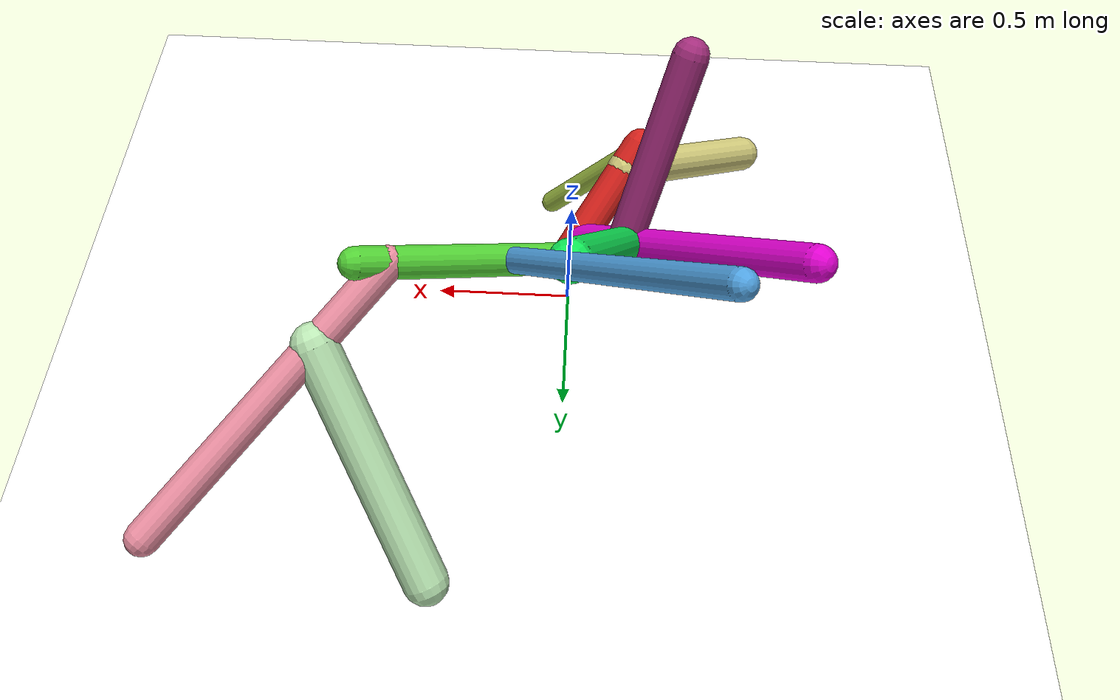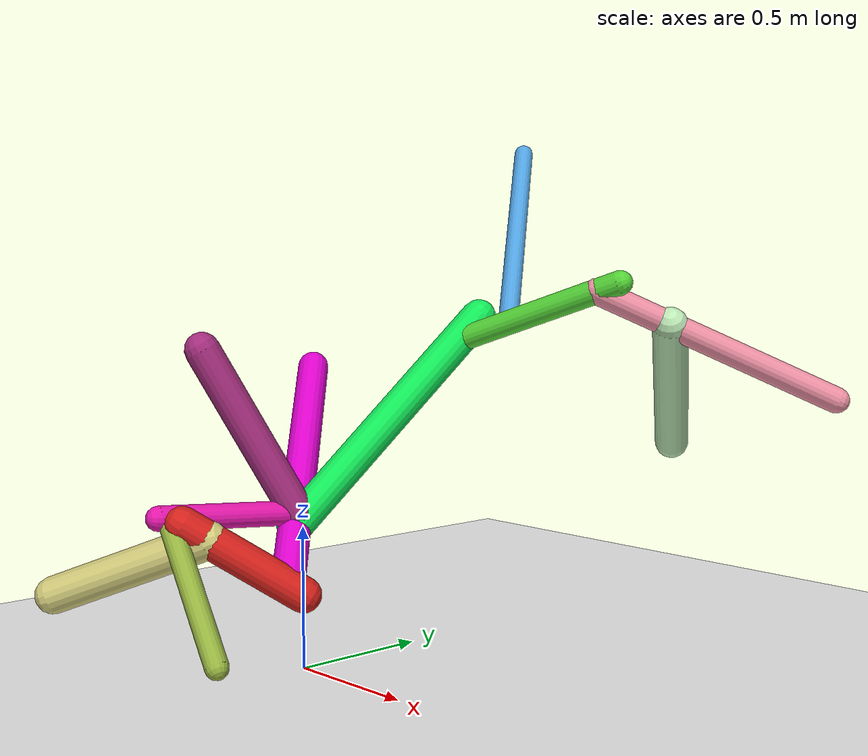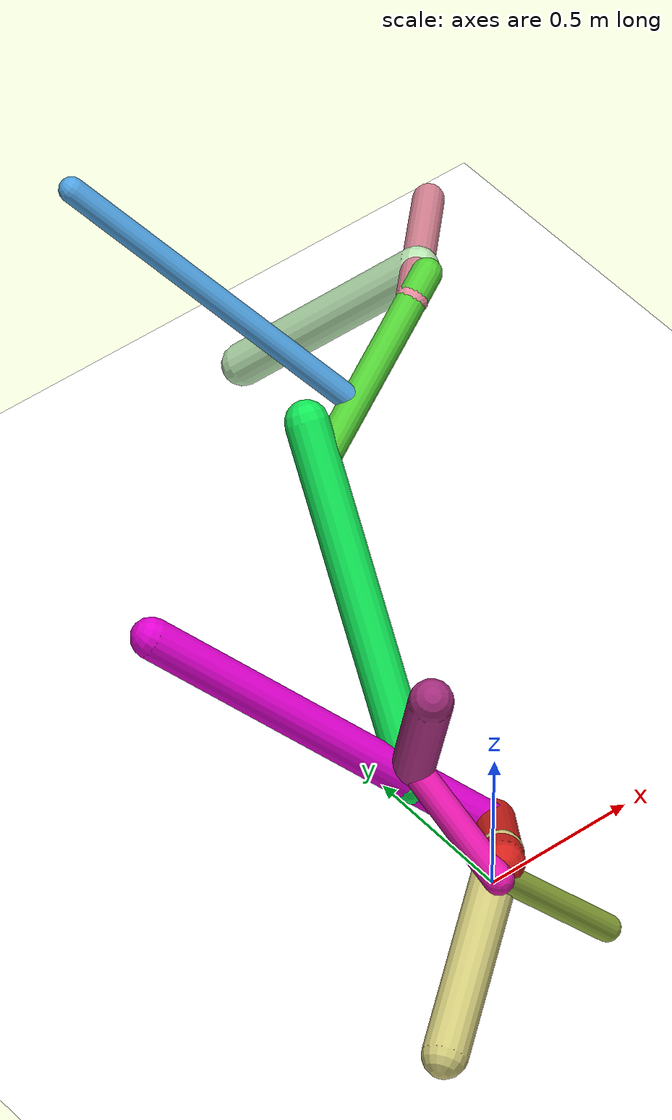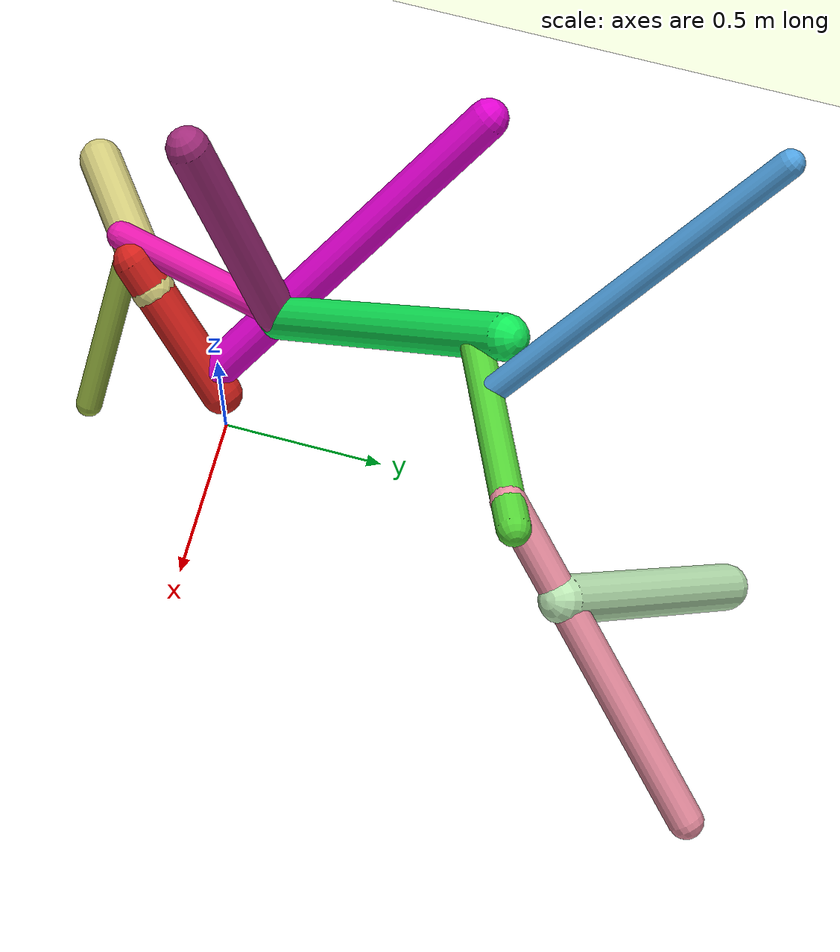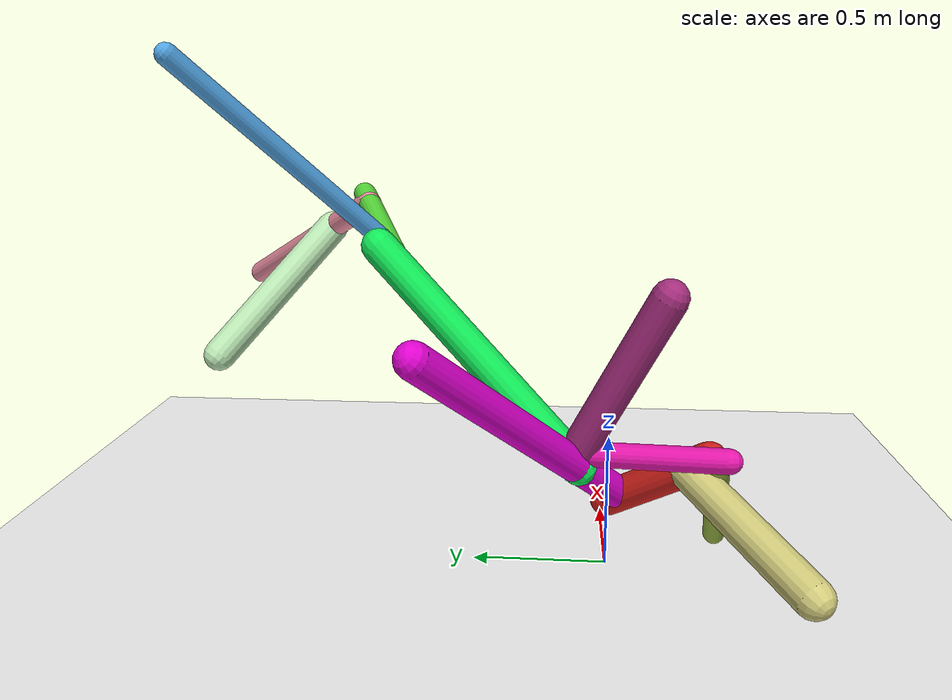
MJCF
<mujoco model="morphology">
  <option timestep="0.01"/>
  <default>
    <default class="/"/>
    <default class="0/"/>
    <default class="0/1/"/>
    <default class="0/2/"/>
    <default class="0/2/3/"/>
    <default class="0/2/3/4/"/>
    <default class="0/2/3/4/5/"/>
    <default class="0/2/3/4/6/"/>
    <default class="0/2/3/4/6/7/"/>
    <default class="0/2/3/8/"/>
    <default class="0/2/3/8/9/"/>
    <default class="0/2/3/8/10/"/>
  </default>
  <asset>
    <texture name="texplane" type="2d" builtin="checker" rgb1="0.10000000000000001 0.20000000000000001 0.29999999999999999" rgb2="0.20000000000000001 0.29999999999999999 0.40000000000000002" width="300" height="300"/>
    <material name="MatPlane" class="/" texture="texplane" texrepeat="20 20" specular="1" shininess="1" reflectance="0.5"/>
  </asset>
  <worldbody>
    <light name="//unnamed_light_0" class="/" directional="true" pos="0 0 1.5" dir="0 0 -1.3" cutoff="100" exponent="1" diffuse="1 1 1" specular="0.10000000000000001 0.10000000000000001 0.10000000000000001"/>
    <geom name="ground" class="/" type="plane" size="15 15 0.5" material="MatPlane" rgba="1 1 1 1"/>
    <site name="body" class="/" size="9.9999999999999995e-07 9.9999999999999995e-07 9.9999999999999995e-07" pos="0 0 0.26041444242000578"/>
    <body pos="0 0 0.26041444242000578" name="0/">
      <freejoint name="0/"/>
      <geom name="0/geom" class="0/" type="capsule" contype="1" conaffinity="1" condim="3" size="0.06404112033335943" rgba="0.83378851830853107 0.13197443782303397 0.10998111179678105 1" friction="0.59999999999999998 0.10000000000000001 0.10000000000000001" fromto="0 0 0 -0.24498329376098904 -0.33215375619246063 0.25663338104677091"/>
      <site name="0/end0" class="0/" size="0.0050000000000000001" pos="-0.24498329376098904 -0.33215375619246063 0.25663338104677091"/>
      <site name="0/attach1" class="0/" size="9.9999999999999995e-07 9.9999999999999995e-07 9.9999999999999995e-07" pos="-0.1917744495667846 -0.26001203097340525 0.20089421052001735"/>
      <body pos="-0.1917744495667846 -0.26001203097340525 0.20089421052001735" name="0/1/">
        <joint name="0/1/joint/" class="0/" type="hinge" axis="0 1 0" limited="true" range="-69.986379206481431 69.986379206481431"/>
        <geom name="0/1/geom" class="0/1/" type="capsule" contype="1" conaffinity="1" condim="3" size="0.067512234945188432" rgba="0.81902205251618865 0.79237762112327825 0.4813105701085737 1" friction="0.59999999999999998 0.10000000000000001 0.10000000000000001" fromto="0 0 0 -0.47988327010683479 -0.33803206739126779 -0.2222996739625791"/>
        <site name="0/1/end1" class="0/1/" size="0.0050000000000000001" pos="-0.47988327010683479 -0.33803206739126779 -0.2222996739625791"/>
      </body>
      <site name="0/attach2" class="0/" size="9.9999999999999995e-07 9.9999999999999995e-07 9.9999999999999995e-07" pos="-0.033129545597047047 -0.044917769053037598 0.034705008527676273"/>
      <body pos="-0.033129545597047047 -0.044917769053037598 0.034705008527676273" name="0/2/">
        <joint name="0/2/joint/" class="0/" type="hinge" axis="0 1 0" limited="true" range="-39.061673218211439 39.061673218211439"/>
        <geom name="0/2/geom" class="0/2/" type="capsule" contype="1" conaffinity="1" condim="3" size="0.060695301739691856" rgba="0.88188144498855547 0.0043939970978417175 0.81675413508498684 1" friction="0.59999999999999998 0.10000000000000001 0.10000000000000001" fromto="0 0 0 -0.71049945480156795 0.66193558864548807 0.68833549956794715"/>
        <site name="0/2/end2" class="0/2/" size="0.0050000000000000001" pos="-0.71049945480156795 0.66193558864548807 0.68833549956794715"/>
        <site name="0/2/attach3" class="0/2/" size="9.9999999999999995e-07 9.9999999999999995e-07 9.9999999999999995e-07" pos="-0.16967789338923103 0.15808011601091962 0.16438480947790796"/>
        <body pos="-0.16967789338923103 0.15808011601091962 0.16438480947790796" name="0/2/3/">
          <geom name="0/2/3/geom" class="0/2/3/" type="capsule" contype="1" conaffinity="1" condim="3" size="0.065474521036833627" rgba="0.064705748365099014 0.91428363294096959 0.34310442786034823 1" friction="0.59999999999999998 0.10000000000000001 0.10000000000000001" fromto="0 0 0 0.20200832061706608 0.73222761108692813 0.74690212080033191"/>
          <site name="0/2/3/end3" class="0/2/3/" size="0.0050000000000000001" pos="0.20200832061706608 0.73222761108692813 0.74690212080033191"/>
          <site name="0/2/3/attach4" class="0/2/3/" size="9.9999999999999995e-07 9.9999999999999995e-07 9.9999999999999995e-07" pos="0.1773094858709218 0.64270076037327406 0.65558107027706158"/>
          <body pos="0.1773094858709218 0.64270076037327406 0.65558107027706158" name="0/2/3/4/">
            <joint name="0/2/3/4/joint/" class="0/2/3/" type="hinge" axis="-5.5511151231257827e-17 -0.71408687610418053 0.70005709294012108" limited="true" range="-66.583154299867914 66.583154299867914"/>
            <geom name="0/2/3/4/geom" class="0/2/3/4/" type="capsule" contype="1" conaffinity="1" condim="3" size="0.046305858168046818" rgba="0.32689233698633546 0.82151344462785181 0.21190558308071838 1" friction="0.59999999999999998 0.10000000000000001 0.10000000000000001" fromto="0 0 0 0.59331466812588474 0.24844078483919918 0.22463057965036948"/>
            <site name="0/2/3/4/end4" class="0/2/3/4/" size="0.0050000000000000001" pos="0.59331466812588474 0.24844078483919918 0.22463057965036948"/>
            <site name="0/2/3/4/attach5" class="0/2/3/4/" size="9.9999999999999995e-07 9.9999999999999995e-07 9.9999999999999995e-07" pos="0.19262678953958998 0.080659308365720703 0.072929037010234801"/>
            <body pos="0.19262678953958998 0.080659308365720703 0.072929037010234801" name="0/2/3/4/5/">
              <joint name="0/2/3/4/5/joint/" class="0/2/3/4/" type="hinge" axis="-0.49159403226993703 0.645940450431988 0.5840344526929081" limited="true" range="-42.202002600027356 42.202002600027356"/>
              <geom name="0/2/3/4/5/geom" class="0/2/3/4/5/" type="capsule" contype="1" conaffinity="1" condim="3" size="0.037997291292198497" rgba="0.31386580793290586 0.63714502566462106 0.88344595696777795 1" friction="0.59999999999999998 0.10000000000000001 0.10000000000000001" fromto="0 0 0 -0.52211286543059643 0.61524941423269386 0.67891877886098806"/>
              <site name="0/2/3/4/5/end5" class="0/2/3/4/5/" size="0.0050000000000000001" pos="-0.52211286543059643 0.61524941423269386 0.67891877886098806"/>
            </body>
            <site name="0/2/3/4/attach6" class="0/2/3/4/" size="9.9999999999999995e-07 9.9999999999999995e-07 9.9999999999999995e-07" pos="0.51181118929816205 0.21431254002259156 0.19377313641468583"/>
            <body pos="0.51181118929816205 0.21431254002259156 0.19377313641468583" name="0/2/3/4/6/">
              <joint name="0/2/3/4/6/joint/" class="0/2/3/4/" type="hinge" axis="2.7755575615628914e-17 -0.6706683764674749 0.74175732474070077" limited="true" range="-45.246208605777539 45.246208605777539"/>
              <geom name="0/2/3/4/6/geom" class="0/2/3/4/6/" type="capsule" contype="1" conaffinity="1" condim="3" size="0.048303271402171513" rgba="0.90692281360237059 0.55228446731470293 0.62436049250810999 1" friction="0.59999999999999998 0.10000000000000001 0.10000000000000001" fromto="0 0 0 0.59551928709825241 0.64813924649584487 -0.3976503748799764"/>
              <site name="0/2/3/4/6/end6" class="0/2/3/4/6/" size="0.0050000000000000001" pos="0.59551928709825241 0.64813924649584487 -0.3976503748799764"/>
              <site name="0/2/3/4/6/attach7" class="0/2/3/4/6/" size="9.9999999999999995e-07 9.9999999999999995e-07 9.9999999999999995e-07" pos="0.18171931029656141 0.19777599046918184 -0.12134074148036179"/>
              <body pos="0.18171931029656141 0.19777599046918184 -0.12134074148036179" name="0/2/3/4/6/7/">
                <geom name="0/2/3/4/6/7/geom" class="0/2/3/4/6/7/" type="capsule" contype="1" conaffinity="1" condim="3" size="0.065642784410255284" rgba="0.73036120817099726 0.9027275631571815 0.70289358858884377 1" friction="0.59999999999999998 0.10000000000000001 0.10000000000000001" fromto="0 0 0 -0.31659756367275449 0.41969832386679284 -0.49651880775818596"/>
                <site name="0/2/3/4/6/7/end7" class="0/2/3/4/6/7/" size="0.0050000000000000001" pos="-0.31659756367275449 0.41969832386679284 -0.49651880775818596"/>
              </body>
            </body>
          </body>
          <site name="0/2/3/attach8" class="0/2/3/" size="9.9999999999999995e-07 9.9999999999999995e-07 9.9999999999999995e-07" pos="0.012867822417544013 0.046642508783339032 0.047577267235267139"/>
          <body pos="0.012867822417544013 0.046642508783339032 0.047577267235267139" name="0/2/3/8/">
            <joint name="0/2/3/8/joint/" class="0/2/3/" type="hinge" axis="-5.5511151231257827e-17 -0.71408687610418053 0.70005709294012108" limited="true" range="-64.244011015264221 64.244011015264221"/>
            <geom name="0/2/3/8/geom" class="0/2/3/8/" type="capsule" contype="1" conaffinity="1" condim="3" size="0.044847876447275281" rgba="0.89747086190465086 0.086786683714592971 0.67121596762717972 1" friction="0.59999999999999998 0.10000000000000001 0.10000000000000001" fromto="0 0 0 -0.11731511998584354 -0.54846368495929598 0.028945020989178394"/>
            <site name="0/2/3/8/end8" class="0/2/3/8/" size="0.0050000000000000001" pos="-0.11731511998584354 -0.54846368495929598 0.028945020989178394"/>
            <site name="0/2/3/8/attach9" class="0/2/3/8/" size="9.9999999999999995e-07 9.9999999999999995e-07 9.9999999999999995e-07" pos="-0.10976014598414062 -0.51314318337991149 0.027080991177178233"/>
            <body pos="-0.10976014598414062 -0.51314318337991149 0.027080991177178233" name="0/2/3/8/9/">
              <joint name="0/2/3/8/9/joint/" class="0/2/3/8/" type="hinge" axis="0.97793950287031417 -0.20859802771094632 0.011008703868593695" limited="true" range="-38.49529165983455 38.49529165983455"/>
              <geom name="0/2/3/8/9/geom" class="0/2/3/8/9/" type="capsule" contype="1" conaffinity="1" condim="3" size="0.041096240493903417" rgba="0.58389594556237068 0.69950166733263774 0.24576329906122829 1" friction="0.59999999999999998 0.10000000000000001 0.10000000000000001" fromto="0 0 0 0.37928895719092393 -0.060881974892846413 -0.43416252332719024"/>
              <site name="0/2/3/8/9/end9" class="0/2/3/8/9/" size="0.0050000000000000001" pos="0.37928895719092393 -0.060881974892846413 -0.43416252332719024"/>
            </body>
            <site name="0/2/3/8/attach10" class="0/2/3/8/" size="9.9999999999999995e-07 9.9999999999999995e-07 9.9999999999999995e-07" pos="-0.0077567984880583139 -0.03626405771703195 0.0019138257291367738"/>
            <body pos="-0.0077567984880583139 -0.03626405771703195 0.0019138257291367738" name="0/2/3/8/10/">
              <geom name="0/2/3/8/10/geom" class="0/2/3/8/10/" type="capsule" contype="1" conaffinity="1" condim="3" size="0.063963279970465345" rgba="0.64017041413709808 0.17484229968909282 0.48653019874125525 1" friction="0.59999999999999998 0.10000000000000001 0.10000000000000001" fromto="0 0 0 -0.171468506504035 -0.28500899471456875 0.59629481306337806"/>
              <site name="0/2/3/8/10/end10" class="0/2/3/8/10/" size="0.0050000000000000001" pos="-0.171468506504035 -0.28500899471456875 0.59629481306337806"/>
            </body>
          </body>
        </body>
      </body>
      <camera name="0/iso" class="0/" mode="trackcom" pos="-2.2999999999999998 -2.2999999999999998 1" xyaxes="0.45000000000000001 -0.45000000000000001 0 0.29999999999999999 0.14999999999999999 0.93999999999999995"/>
    </body>
  </worldbody>
  <actuator>
    <motor name="0/1/motor" class="0/1/" ctrllimited="true" ctrlrange="-1 1" gear="84" joint="0/1/joint/"/>
    <motor name="0/2/motor" class="0/2/" ctrllimited="true" ctrlrange="-1 1" gear="75" joint="0/2/joint/"/>
    <motor name="0/2/3/4/motor" class="0/2/3/4/" ctrllimited="true" ctrlrange="-1 1" gear="77" joint="0/2/3/4/joint/"/>
    <motor name="0/2/3/4/5/motor" class="0/2/3/4/5/" ctrllimited="true" ctrlrange="-1 1" gear="69" joint="0/2/3/4/5/joint/"/>
    <motor name="0/2/3/4/6/motor" class="0/2/3/4/6/" ctrllimited="true" ctrlrange="-1 1" gear="77" joint="0/2/3/4/6/joint/"/>
    <motor name="0/2/3/8/motor" class="0/2/3/8/" ctrllimited="true" ctrlrange="-1 1" gear="59" joint="0/2/3/8/joint/"/>
    <motor name="0/2/3/8/9/motor" class="0/2/3/8/9/" ctrllimited="true" ctrlrange="-1 1" gear="51" joint="0/2/3/8/9/joint/"/>
  </actuator>
  <sensor>
    <subtreelinvel name="velocity" body="0/"/>
  </sensor>
</mujoco>
